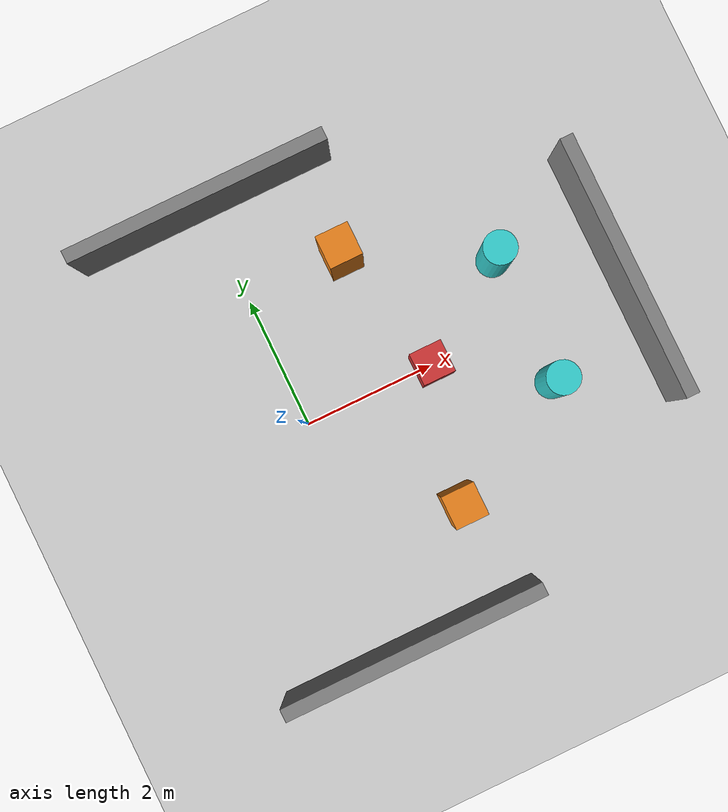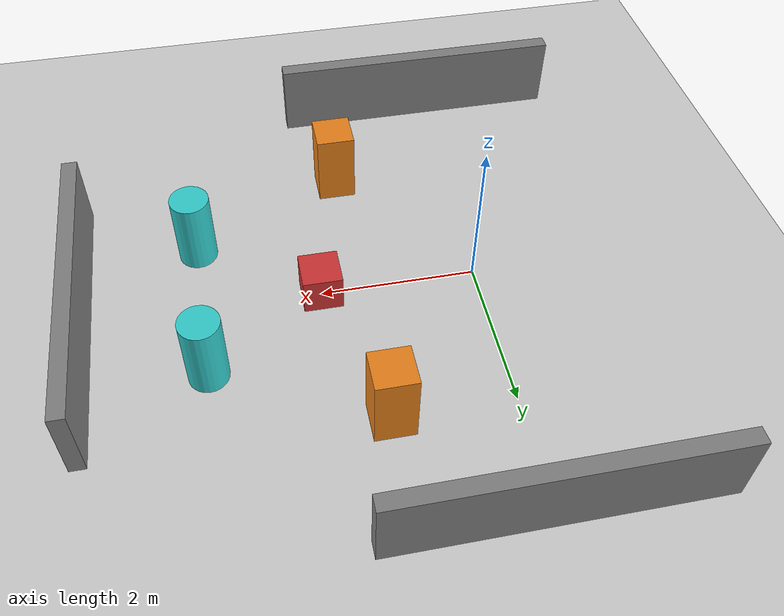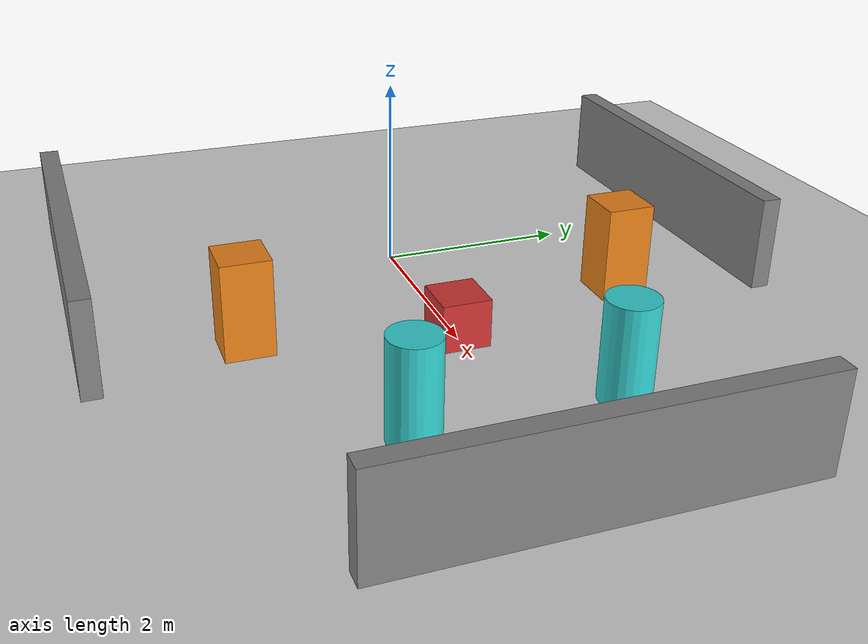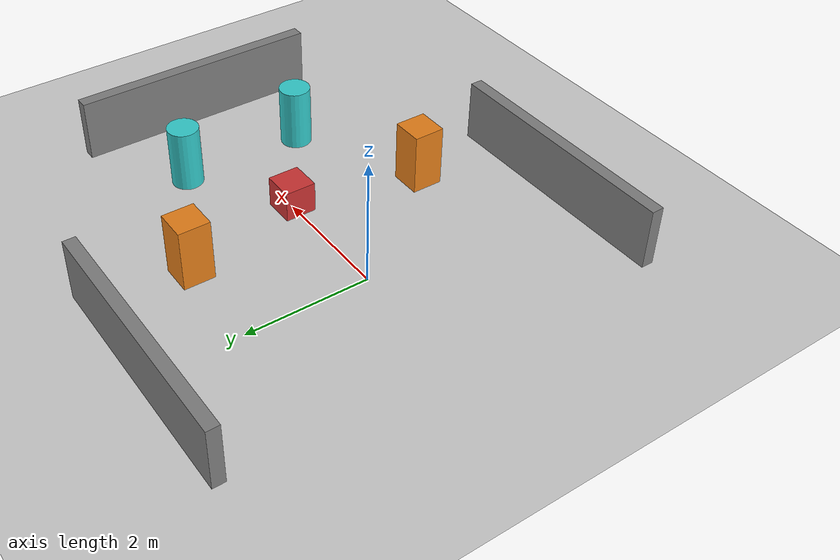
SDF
<?xml version="1.0"?>
<sdf version="1.9">
  <world name="two_wheel_world">
    <physics name="1ms" type="ignored">
      <max_step_size>0.001</max_step_size>
      <real_time_factor>1.0</real_time_factor>
    </physics>

    <plugin filename="gz-sim-physics-system" name="gz::sim::systems::Physics"></plugin>
    <plugin filename="gz-sim-user-commands-system" name="gz::sim::systems::UserCommands"></plugin>
    <plugin filename="gz-sim-scene-broadcaster-system" name="gz::sim::systems::SceneBroadcaster"></plugin>
    <plugin filename="gz-sim-sensors-system" name="gz::sim::systems::Sensors">
      <render_engine>ogre2</render_engine>
    </plugin>

    <light type="directional" name="sun">
      <cast_shadows>true</cast_shadows>
      <pose>0 0 10 0 0 0</pose>
      <diffuse>0.8 0.8 0.8 1</diffuse>
      <specular>0.2 0.2 0.2 1</specular>
      <direction>-0.5 0.1 -0.9</direction>
    </light>

    <model name="ground_plane">
      <static>true</static>
      <link name="link">
        <collision name="collision">
          <geometry><plane><normal>0 0 1</normal><size>50 50</size></plane></geometry>
        </collision>
        <visual name="visual">
          <geometry><plane><normal>0 0 1</normal><size>50 50</size></plane></geometry>
          <material>
            <ambient>0.8 0.8 0.8 1</ambient>
            <diffuse>0.8 0.8 0.8 1</diffuse>
          </material>
        </visual>
      </link>
    </model>

    <model name="box_obstacle_1">
      <static>true</static>
      <pose>2 0 0.25 0 0 0</pose>
      <link name="link">
        <collision name="collision">
          <geometry><box><size>0.5 0.5 0.5</size></box></geometry>
        </collision>
        <visual name="visual">
          <geometry><box><size>0.5 0.5 0.5</size></box></geometry>
          <material><ambient>0.8 0.2 0.2 1</ambient><diffuse>0.8 0.2 0.2 1</diffuse></material>
        </visual>
      </link>
    </model>

    <!-- Additional Box Obstacles -->
    <model name="box_obstacle_2">
      <static>true</static>
      <pose>1.5 2.0 0.5 0 0 0</pose>
      <link name="link">
        <collision name="collision">
          <geometry><box><size>0.5 0.5 1.0</size></box></geometry>
        </collision>
        <visual name="visual">
          <geometry><box><size>0.5 0.5 1.0</size></box></geometry>
          <material><ambient>0.9 0.5 0.1 1</ambient><diffuse>0.9 0.5 0.1 1</diffuse></material>
        </visual>
      </link>
    </model>

    <model name="box_obstacle_3">
      <static>true</static>
      <pose>1.5 -2.0 0.5 0 0 0</pose>
      <link name="link">
        <collision name="collision">
          <geometry><box><size>0.5 0.5 1.0</size></box></geometry>
        </collision>
        <visual name="visual">
          <geometry><box><size>0.5 0.5 1.0</size></box></geometry>
          <material><ambient>0.9 0.5 0.1 1</ambient><diffuse>0.9 0.5 0.1 1</diffuse></material>
        </visual>
      </link>
    </model>

    <!-- Cylinder Obstacles -->
    <model name="cylinder_obstacle_1">
      <static>true</static>
      <pose>3.5 1.0 0.5 0 0 0</pose>
      <link name="link">
        <collision name="collision">
          <geometry><cylinder><radius>0.25</radius><length>1.0</length></cylinder></geometry>
        </collision>
        <visual name="visual">
          <geometry><cylinder><radius>0.25</radius><length>1.0</length></cylinder></geometry>
          <material><ambient>0.2 0.8 0.8 1</ambient><diffuse>0.2 0.8 0.8 1</diffuse></material>
        </visual>
      </link>
    </model>

    <model name="cylinder_obstacle_2">
      <static>true</static>
      <pose>3.5 -1.0 0.5 0 0 0</pose>
      <link name="link">
        <collision name="collision">
          <geometry><cylinder><radius>0.25</radius><length>1.0</length></cylinder></geometry>
        </collision>
        <visual name="visual">
          <geometry><cylinder><radius>0.25</radius><length>1.0</length></cylinder></geometry>
          <material><ambient>0.2 0.8 0.8 1</ambient><diffuse>0.2 0.8 0.8 1</diffuse></material>
        </visual>
      </link>
    </model>

    <!-- Wall Obstacles -->
    <model name="wall_obstacle_1">
      <static>true</static>
      <pose>5.0 0.0 0.5 0 0 0</pose>
      <link name="link">
        <collision name="collision">
          <geometry><box><size>0.2 4.0 1.0</size></box></geometry>
        </collision>
        <visual name="visual">
          <geometry><box><size>0.2 4.0 1.0</size></box></geometry>
          <material><ambient>0.5 0.5 0.5 1</ambient><diffuse>0.5 0.5 0.5 1</diffuse></material>
        </visual>
      </link>
    </model>

    <model name="wall_obstacle_2">
      <static>true</static>
      <pose>0.0 3.5 0.5 0 0 0</pose>
      <link name="link">
        <collision name="collision">
          <geometry><box><size>4.0 0.2 1.0</size></box></geometry>
        </collision>
        <visual name="visual">
          <geometry><box><size>4.0 0.2 1.0</size></box></geometry>
          <material><ambient>0.5 0.5 0.5 1</ambient><diffuse>0.5 0.5 0.5 1</diffuse></material>
        </visual>
      </link>
    </model>

    <model name="wall_obstacle_3">
      <static>true</static>
      <pose>0.0 -3.5 0.5 0 0 0</pose>
      <link name="link">
        <collision name="collision">
          <geometry><box><size>4.0 0.2 1.0</size></box></geometry>
        </collision>
        <visual name="visual">
          <geometry><box><size>4.0 0.2 1.0</size></box></geometry>
          <material><ambient>0.5 0.5 0.5 1</ambient><diffuse>0.5 0.5 0.5 1</diffuse></material>
        </visual>
      </link>
    </model>

  </world>
</sdf>
